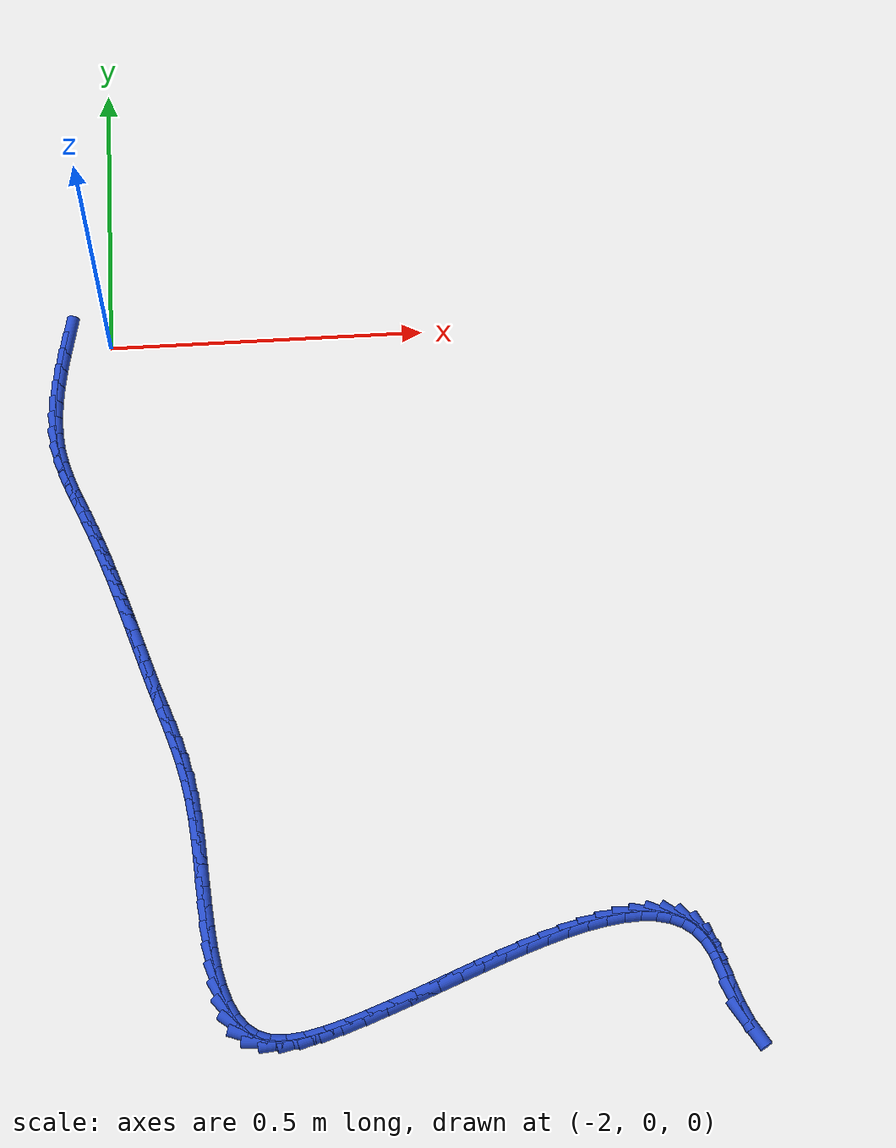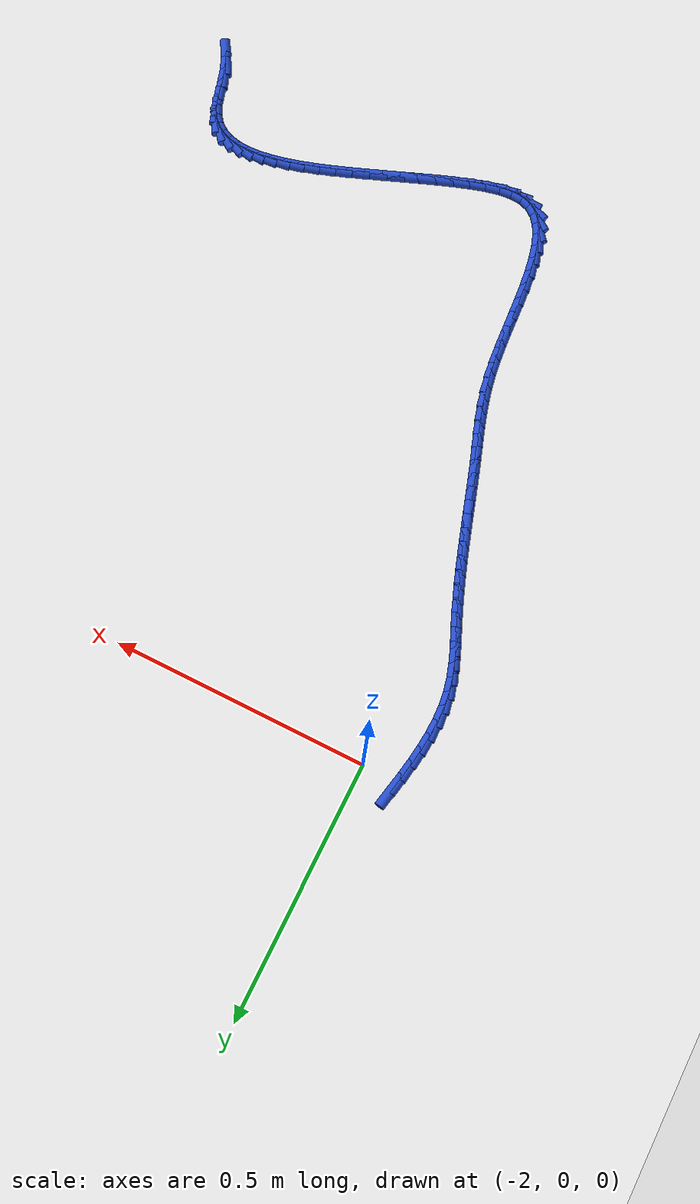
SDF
<sdf version="1.6">
 <world name="default">
  <model name="ground_plane">
   <static>1</static>
   <link name="link">
    <collision name="collision">
     <geometry><plane><normal>0 0 1</normal><size>100 100</size></plane></geometry>
     <surface><friction><ode><mu>100</mu><mu2>50</mu2></ode></friction></surface>
    </collision>
    <visual name="visual">
     <cast_shadows>0</cast_shadows>
     <geometry><plane><normal>0 0 1</normal><size>100 100</size></plane></geometry>
     <material>
      <script><uri>file://media/materials/scripts/gazebo.material</uri><name>Gazebo/WhiteGlow</name></script>
     </material>
    </visual>
   </link>
  </model>
  <model name="line">
   <link name="link_148">
    <pose>-2.0668952257978557 0.015022374834976732 0.01 0 1.57 1.3718555483747725</pose>
    <collision name="collision">
     <geometry><cylinder><radius>0.01</radius><length>0.08</length></cylinder></geometry>
    </collision>
    <visual name="visual">
     <material>
      <script><name>Gazebo/Blue</name><uri>file://media/materials/scripts/gazebo.material</uri></script>
     </material>
     <geometry><cylinder><radius>0.01</radius><length>0.08</length></cylinder></geometry>
    </visual>
   </link>
   <link name="link_149">
    <pose>-2.072897684405517 -0.014750614025961714 0.01 0 1.57 1.3966360684300205</pose>
    <collision name="collision">
     <geometry><cylinder><radius>0.01</radius><length>0.08</length></cylinder></geometry>
    </collision>
    <visual name="visual">
     <material>
      <script><name>Gazebo/Blue</name><uri>file://media/materials/scripts/gazebo.material</uri></script>
     </material>
     <geometry><cylinder><radius>0.01</radius><length>0.08</length></cylinder></geometry>
    </visual>
   </link>
   <link name="link_150">
    <pose>-2.078104745038565 -0.04434581224088639 0.01 0 1.57 1.4318176312545738</pose>
    <collision name="collision">
     <geometry><cylinder><radius>0.01</radius><length>0.08</length></cylinder></geometry>
    </collision>
    <visual name="visual">
     <material>
      <script><name>Gazebo/Blue</name><uri>file://media/materials/scripts/gazebo.material</uri></script>
     </material>
     <geometry><cylinder><radius>0.01</radius><length>0.08</length></cylinder></geometry>
    </visual>
   </link>
   <link name="link_151">
    <pose>-2.0822042166530728 -0.07365277672425838 0.01 0 1.57 1.4783641587624445</pose>
    <collision name="collision">
     <geometry><cylinder><radius>0.01</radius><length>0.08</length></cylinder></geometry>
    </collision>
    <visual name="visual">
     <material>
      <script><name>Gazebo/Blue</name><uri>file://media/materials/scripts/gazebo.material</uri></script>
     </material>
     <geometry><cylinder><radius>0.01</radius><length>0.08</length></cylinder></geometry>
    </visual>
   </link>
   <link name="link_152">
    <pose>-2.0848839082051156 -0.10256106439053783 0.01 0 1.57 1.537437290419115</pose>
    <collision name="collision">
     <geometry><cylinder><radius>0.01</radius><length>0.08</length></cylinder></geometry>
    </collision>
    <visual name="visual">
     <material>
      <script><name>Gazebo/Blue</name><uri>file://media/materials/scripts/gazebo.material</uri></script>
     </material>
     <geometry><cylinder><radius>0.01</radius><length>0.08</length></cylinder></geometry>
    </visual>
   </link>
   <link name="link_153">
    <pose>-2.0858316286507677 -0.13096023215418773 0.01 0 1.57 -1.531347497700764</pose>
    <collision name="collision">
     <geometry><cylinder><radius>0.01</radius><length>0.08</length></cylinder></geometry>
    </collision>
    <visual name="visual">
     <material>
      <script><name>Gazebo/Blue</name><uri>file://media/materials/scripts/gazebo.material</uri></script>
     </material>
     <geometry><cylinder><radius>0.01</radius><length>0.08</length></cylinder></geometry>
    </visual>
   </link>
   <link name="link_154">
    <pose>-2.084735186946103 -0.1587398369296681 0.01 0 1.57 -1.4438364866861566</pose>
    <collision name="collision">
     <geometry><cylinder><radius>0.01</radius><length>0.08</length></cylinder></geometry>
    </collision>
    <visual name="visual">
     <material>
      <script><name>Gazebo/Blue</name><uri>file://media/materials/scripts/gazebo.material</uri></script>
     </material>
     <geometry><cylinder><radius>0.01</radius><length>0.08</length></cylinder></geometry>
    </visual>
   </link>
   <link name="link_155">
    <pose>-2.081282402218603 -0.185789439192193 0.01 0 1.57 -1.3480118682883715</pose>
    <collision name="collision">
     <geometry><cylinder><radius>0.01</radius><length>0.08</length></cylinder></geometry>
    </collision>
    <visual name="visual">
     <material>
      <script><name>Gazebo/Blue</name><uri>file://media/materials/scripts/gazebo.material</uri></script>
     </material>
     <geometry><cylinder><radius>0.01</radius><length>0.08</length></cylinder></geometry>
    </visual>
   </link>
   <link name="link_156">
    <pose>-2.075331346983922 -0.21205820082871427 0.01 0 1.57 -1.2688601374468051</pose>
    <collision name="collision">
     <geometry><cylinder><radius>0.01</radius><length>0.08</length></cylinder></geometry>
    </collision>
    <visual name="visual">
     <material>
      <script><name>Gazebo/Blue</name><uri>file://media/materials/scripts/gazebo.material</uri></script>
     </material>
     <geometry><cylinder><radius>0.01</radius><length>0.08</length></cylinder></geometry>
    </visual>
   </link>
   <link name="link_157">
    <pose>-2.0673430015627 -0.23770634652329317 0.01 0 1.57 -1.2131260402845492</pose>
    <collision name="collision">
     <geometry><cylinder><radius>0.01</radius><length>0.08</length></cylinder></geometry>
    </collision>
    <visual name="visual">
     <material>
      <script><name>Gazebo/Blue</name><uri>file://media/materials/scripts/gazebo.material</uri></script>
     </material>
     <geometry><cylinder><radius>0.01</radius><length>0.08</length></cylinder></geometry>
    </visual>
   </link>
   <link name="link_158">
    <pose>-2.0579117411760026 -0.2629407991459668 0.01 0 1.57 -1.1810681510896888</pose>
    <collision name="collision">
     <geometry><cylinder><radius>0.01</radius><length>0.08</length></cylinder></geometry>
    </collision>
    <visual name="visual">
     <material>
      <script><name>Gazebo/Blue</name><uri>file://media/materials/scripts/gazebo.material</uri></script>
     </material>
     <geometry><cylinder><radius>0.01</radius><length>0.08</length></cylinder></geometry>
    </visual>
   </link>
   <link name="link_159">
    <pose>-2.0476319410448935 -0.2879684815667723 0.01 0 1.57 -1.1724120593991565</pose>
    <collision name="collision">
     <geometry><cylinder><radius>0.01</radius><length>0.08</length></cylinder></geometry>
    </collision>
    <visual name="visual">
     <material>
      <script><name>Gazebo/Blue</name><uri>file://media/materials/scripts/gazebo.material</uri></script>
     </material>
     <geometry><cylinder><radius>0.01</radius><length>0.08</length></cylinder></geometry>
    </visual>
   </link>
   <link name="link_160">
    <pose>-2.037097976390436 -0.31299631665574656 0.01 0 1.57 -1.185182379669828</pose>
    <collision name="collision">
     <geometry><cylinder><radius>0.01</radius><length>0.08</length></cylinder></geometry>
    </collision>
    <visual name="visual">
     <material>
      <script><name>Gazebo/Blue</name><uri>file://media/materials/scripts/gazebo.material</uri></script>
     </material>
     <geometry><cylinder><radius>0.01</radius><length>0.08</length></cylinder></geometry>
    </visual>
   </link>
   <link name="link_161">
    <pose>-2.026861179428575 -0.33821401771417064 0.01 0 1.57 -1.203708096643061</pose>
    <collision name="collision">
     <geometry><cylinder><radius>0.01</radius><length>0.08</length></cylinder></geometry>
    </collision>
    <visual name="visual">
     <material>
      <script><name>Gazebo/Blue</name><uri>file://media/materials/scripts/gazebo.material</uri></script>
     </material>
     <geometry><cylinder><radius>0.01</radius><length>0.08</length></cylinder></geometry>
    </visual>
   </link>
   <link name="link_162">
    <pose>-2.0170791229400535 -0.3636538640989615 0.01 0 1.57 -1.2196746884730596</pose>
    <collision name="collision">
     <geometry><cylinder><radius>0.01</radius><length>0.08</length></cylinder></geometry>
    </collision>
    <visual name="visual">
     <material>
      <script><name>Gazebo/Blue</name><uri>file://media/materials/scripts/gazebo.material</uri></script>
     </material>
     <geometry><cylinder><radius>0.01</radius><length>0.08</length></cylinder></geometry>
    </visual>
   </link>
   <link name="link_163">
    <pose>-2.007698232287559 -0.38926371364492085 0.01 0 1.57 -1.2330521024685104</pose>
    <collision name="collision">
     <geometry><cylinder><radius>0.01</radius><length>0.08</length></cylinder></geometry>
    </collision>
    <visual name="visual">
     <material>
      <script><name>Gazebo/Blue</name><uri>file://media/materials/scripts/gazebo.material</uri></script>
     </material>
     <geometry><cylinder><radius>0.01</radius><length>0.08</length></cylinder></geometry>
    </visual>
   </link>
   <link name="link_164">
    <pose>-1.9986629208203004 -0.41499061973827206 0.01 0 1.57 -1.2438791995998573</pose>
    <collision name="collision">
     <geometry><cylinder><radius>0.01</radius><length>0.08</length></cylinder></geometry>
    </collision>
    <visual name="visual">
     <material>
      <script><name>Gazebo/Blue</name><uri>file://media/materials/scripts/gazebo.material</uri></script>
     </material>
     <geometry><cylinder><radius>0.01</radius><length>0.08</length></cylinder></geometry>
    </visual>
   </link>
   <link name="link_165">
    <pose>-1.9899176018874891 -0.4407816357652384 0.01 0 1.57 -1.2521817978813097</pose>
    <collision name="collision">
     <geometry><cylinder><radius>0.01</radius><length>0.08</length></cylinder></geometry>
    </collision>
    <visual name="visual">
     <material>
      <script><name>Gazebo/Blue</name><uri>file://media/materials/scripts/gazebo.material</uri></script>
     </material>
     <geometry><cylinder><radius>0.01</radius><length>0.08</length></cylinder></geometry>
    </visual>
   </link>
   <link name="link_166">
    <pose>-1.9814066888383344 -0.4665838151120431 0.01 0 1.57 -1.257970723034626</pose>
    <collision name="collision">
     <geometry><cylinder><radius>0.01</radius><length>0.08</length></cylinder></geometry>
    </collision>
    <visual name="visual">
     <material>
      <script><name>Gazebo/Blue</name><uri>file://media/materials/scripts/gazebo.material</uri></script>
     </material>
     <geometry><cylinder><radius>0.01</radius><length>0.08</length></cylinder></geometry>
    </visual>
   </link>
   <link name="link_167">
    <pose>-1.9730745950220463 -0.49234421116490973 0.01 0 1.57 -1.2612401325202107</pose>
    <collision name="collision">
     <geometry><cylinder><radius>0.01</radius><length>0.08</length></cylinder></geometry>
    </collision>
    <visual name="visual">
     <material>
      <script><name>Gazebo/Blue</name><uri>file://media/materials/scripts/gazebo.material</uri></script>
     </material>
     <geometry><cylinder><radius>0.01</radius><length>0.08</length></cylinder></geometry>
    </visual>
   </link>
   <link name="link_168">
    <pose>-1.964865733787834 -0.5180098773100611 0.01 0 1.57 -1.2619660208270171</pose>
    <collision name="collision">
     <geometry><cylinder><radius>0.01</radius><length>0.08</length></cylinder></geometry>
    </collision>
    <visual name="visual">
     <material>
      <script><name>Gazebo/Blue</name><uri>file://media/materials/scripts/gazebo.material</uri></script>
     </material>
     <geometry><cylinder><radius>0.01</radius><length>0.08</length></cylinder></geometry>
    </visual>
   </link>
   <link name="link_169">
    <pose>-1.9567245184849091 -0.5435278669337203 0.01 0 1.57 -1.2601048426464572</pose>
    <collision name="collision">
     <geometry><cylinder><radius>0.01</radius><length>0.08</length></cylinder></geometry>
    </collision>
    <visual name="visual">
     <material>
      <script><name>Gazebo/Blue</name><uri>file://media/materials/scripts/gazebo.material</uri></script>
     </material>
     <geometry><cylinder><radius>0.01</radius><length>0.08</length></cylinder></geometry>
    </visual>
   </link>
   <link name="link_170">
    <pose>-1.9485953624624797 -0.568845233422112 0.01 0 1.57 -1.255592222701656</pose>
    <collision name="collision">
     <geometry><cylinder><radius>0.01</radius><length>0.08</length></cylinder></geometry>
    </collision>
    <visual name="visual">
     <material>
      <script><name>Gazebo/Blue</name><uri>file://media/materials/scripts/gazebo.material</uri></script>
     </material>
     <geometry><cylinder><radius>0.01</radius><length>0.08</length></cylinder></geometry>
    </visual>
   </link>
   <link name="link_171">
    <pose>-1.9404226790697567 -0.5939090301614587 0.01 0 1.57 -1.2483563940652826</pose>
    <collision name="collision">
     <geometry><cylinder><radius>0.01</radius><length>0.08</length></cylinder></geometry>
    </collision>
    <visual name="visual">
     <material>
      <script><name>Gazebo/Blue</name><uri>file://media/materials/scripts/gazebo.material</uri></script>
     </material>
     <geometry><cylinder><radius>0.01</radius><length>0.08</length></cylinder></geometry>
    </visual>
   </link>
   <link name="link_172">
    <pose>-1.9321511523132504 -0.618666705994754 0.01 0 1.57 -1.2424625296788228</pose>
    <collision name="collision">
     <geometry><cylinder><radius>0.01</radius><length>0.08</length></cylinder></geometry>
    </collision>
    <visual name="visual">
     <material>
      <script><name>Gazebo/Blue</name><uri>file://media/materials/scripts/gazebo.material</uri></script>
     </material>
     <geometry><cylinder><radius>0.01</radius><length>0.08</length></cylinder></geometry>
    </visual>
   </link>
   <link name="link_173">
    <pose>-1.9238014591904002 -0.6431767429525537 0.01 0 1.57 -1.247841131215723</pose>
    <collision name="collision">
     <geometry><cylinder><radius>0.01</radius><length>0.08</length></cylinder></geometry>
    </collision>
    <visual name="visual">
     <material>
      <script><name>Gazebo/Blue</name><uri>file://media/materials/scripts/gazebo.material</uri></script>
     </material>
     <geometry><cylinder><radius>0.01</radius><length>0.08</length></cylinder></geometry>
    </visual>
   </link>
   <link name="link_174">
    <pose>-1.9155740336315898 -0.6677602655144917 0.01 0 1.57 -1.2656840586280858</pose>
    <collision name="collision">
     <geometry><cylinder><radius>0.01</radius><length>0.08</length></cylinder></geometry>
    </collision>
    <visual name="visual">
     <material>
      <script><name>Gazebo/Blue</name><uri>file://media/materials/scripts/gazebo.material</uri></script>
     </material>
     <geometry><cylinder><radius>0.01</radius><length>0.08</length></cylinder></geometry>
    </visual>
   </link>
   <link name="link_175">
    <pose>-1.9076952966180576 -0.6927763677815665 0.01 0 1.57 -1.2950069334443015</pose>
    <collision name="collision">
     <geometry><cylinder><radius>0.01</radius><length>0.08</length></cylinder></geometry>
    </collision>
    <visual name="visual">
     <material>
      <script><name>Gazebo/Blue</name><uri>file://media/materials/scripts/gazebo.material</uri></script>
     </material>
     <geometry><cylinder><radius>0.01</radius><length>0.08</length></cylinder></geometry>
    </visual>
   </link>
   <link name="link_176">
    <pose>-1.900391669131042 -0.718584143854776 0.01 0 1.57 -1.334127661604401</pose>
    <collision name="collision">
     <geometry><cylinder><radius>0.01</radius><length>0.08</length></cylinder></geometry>
    </collision>
    <visual name="visual">
     <material>
      <script><name>Gazebo/Blue</name><uri>file://media/materials/scripts/gazebo.material</uri></script>
     </material>
     <geometry><cylinder><radius>0.01</radius><length>0.08</length></cylinder></geometry>
    </visual>
   </link>
   <link name="link_177">
    <pose>-1.8938895721517823 -0.7455426878351185 0.01 0 1.57 -1.3808266008054</pose>
    <collision name="collision">
     <geometry><cylinder><radius>0.01</radius><length>0.08</length></cylinder></geometry>
    </collision>
    <visual name="visual">
     <material>
      <script><name>Gazebo/Blue</name><uri>file://media/materials/scripts/gazebo.material</uri></script>
     </material>
     <geometry><cylinder><radius>0.01</radius><length>0.08</length></cylinder></geometry>
    </visual>
   </link>
   <link name="link_178">
    <pose>-1.888415426661517 -0.7740110938235919 0.01 0 1.57 -1.4303297738023029</pose>
    <collision name="collision">
     <geometry><cylinder><radius>0.01</radius><length>0.08</length></cylinder></geometry>
    </collision>
    <visual name="visual">
     <material>
      <script><name>Gazebo/Blue</name><uri>file://media/materials/scripts/gazebo.material</uri></script>
     </material>
     <geometry><cylinder><radius>0.01</radius><length>0.08</length></cylinder></geometry>
    </visual>
   </link>
   <link name="link_179">
    <pose>-1.8841383276136159 -0.8042598015427438 0.01 0 1.57 -1.4675696443185842</pose>
    <collision name="collision">
     <geometry><cylinder><radius>0.01</radius><length>0.08</length></cylinder></geometry>
    </collision>
    <visual name="visual">
     <material>
      <script><name>Gazebo/Blue</name><uri>file://media/materials/scripts/gazebo.material</uri></script>
     </material>
     <geometry><cylinder><radius>0.01</radius><length>0.08</length></cylinder></geometry>
    </visual>
   </link>
   <link name="link_180">
    <pose>-1.8808523506970836 -0.8359792855400611 0.01 0 1.57 -1.4897568450833243</pose>
    <collision name="collision">
     <geometry><cylinder><radius>0.01</radius><length>0.08</length></cylinder></geometry>
    </collision>
    <visual name="visual">
     <material>
      <script><name>Gazebo/Blue</name><uri>file://media/materials/scripts/gazebo.material</uri></script>
     </material>
     <geometry><cylinder><radius>0.01</radius><length>0.08</length></cylinder></geometry>
    </visual>
   </link>
   <link name="link_181">
    <pose>-1.8782008014401574 -0.8686268551606172 0.01 0 1.57 -1.4990438915960649</pose>
    <collision name="collision">
     <geometry><cylinder><radius>0.01</radius><length>0.08</length></cylinder></geometry>
    </collision>
    <visual name="visual">
     <material>
      <script><name>Gazebo/Blue</name><uri>file://media/materials/scripts/gazebo.material</uri></script>
     </material>
     <geometry><cylinder><radius>0.01</radius><length>0.08</length></cylinder></geometry>
    </visual>
   </link>
   <link name="link_182">
    <pose>-1.8758265753858683 -0.9016591857096802 0.01 0 1.57 -1.4962851167304343</pose>
    <collision name="collision">
     <geometry><cylinder><radius>0.01</radius><length>0.08</length></cylinder></geometry>
    </collision>
    <visual name="visual">
     <material>
      <script><name>Gazebo/Blue</name><uri>file://media/materials/scripts/gazebo.material</uri></script>
     </material>
     <geometry><cylinder><radius>0.01</radius><length>0.08</length></cylinder></geometry>
    </visual>
   </link>
   <link name="link_183">
    <pose>-1.8733725680772486 -0.9345329524925183 0.01 0 1.57 -1.4811792484589803</pose>
    <collision name="collision">
     <geometry><cylinder><radius>0.01</radius><length>0.08</length></cylinder></geometry>
    </collision>
    <visual name="visual">
     <material>
      <script><name>Gazebo/Blue</name><uri>file://media/materials/scripts/gazebo.material</uri></script>
     </material>
     <geometry><cylinder><radius>0.01</radius><length>0.08</length></cylinder></geometry>
    </visual>
   </link>
   <link name="link_184">
    <pose>-1.8704816750573292 -0.9667048308143988 0.01 0 1.57 -1.4522063421026927</pose>
    <collision name="collision">
     <geometry><cylinder><radius>0.01</radius><length>0.08</length></cylinder></geometry>
    </collision>
    <visual name="visual">
     <material>
      <script><name>Gazebo/Blue</name><uri>file://media/materials/scripts/gazebo.material</uri></script>
     </material>
     <geometry><cylinder><radius>0.01</radius><length>0.08</length></cylinder></geometry>
    </visual>
   </link>
   <link name="link_185">
    <pose>-1.8667967918691422 -0.9976314959805922 0.01 0 1.57 -1.4063281413633038</pose>
    <collision name="collision">
     <geometry><cylinder><radius>0.01</radius><length>0.08</length></cylinder></geometry>
    </collision>
    <visual name="visual">
     <material>
      <script><name>Gazebo/Blue</name><uri>file://media/materials/scripts/gazebo.material</uri></script>
     </material>
     <geometry><cylinder><radius>0.01</radius><length>0.08</length></cylinder></geometry>
    </visual>
   </link>
   <link name="link_186">
    <pose>-1.8619608140557196 -1.0267696232963657 0.01 0 1.57 -1.338404537924681</pose>
    <collision name="collision">
     <geometry><cylinder><radius>0.01</radius><length>0.08</length></cylinder></geometry>
    </collision>
    <visual name="visual">
     <material>
      <script><name>Gazebo/Blue</name><uri>file://media/materials/scripts/gazebo.material</uri></script>
     </material>
     <geometry><cylinder><radius>0.01</radius><length>0.08</length></cylinder></geometry>
    </visual>
   </link>
   <link name="link_187">
    <pose>-1.8556166371600913 -1.0535758880669872 0.01 0 1.57 -1.2403292415985003</pose>
    <collision name="collision">
     <geometry><cylinder><radius>0.01</radius><length>0.08</length></cylinder></geometry>
    </collision>
    <visual name="visual">
     <material>
      <script><name>Gazebo/Blue</name><uri>file://media/materials/scripts/gazebo.material</uri></script>
     </material>
     <geometry><cylinder><radius>0.01</radius><length>0.08</length></cylinder></geometry>
    </visual>
   </link>
   <link name="link_188">
    <pose>-1.8474071567252897 -1.077506965597725 0.01 0 1.57 -1.1003234913285729</pose>
    <collision name="collision">
     <geometry><cylinder><radius>0.01</radius><length>0.08</length></cylinder></geometry>
    </collision>
    <visual name="visual">
     <material>
      <script><name>Gazebo/Blue</name><uri>file://media/materials/scripts/gazebo.material</uri></script>
     </material>
     <geometry><cylinder><radius>0.01</radius><length>0.08</length></cylinder></geometry>
    </visual>
   </link>
   <link name="link_189">
    <pose>-1.8369752682943477 -1.0980195311938479 0.01 0 1.57 -0.9045560539656115</pose>
    <collision name="collision">
     <geometry><cylinder><radius>0.01</radius><length>0.08</length></cylinder></geometry>
    </collision>
    <visual name="visual">
     <material>
      <script><name>Gazebo/Blue</name><uri>file://media/materials/scripts/gazebo.material</uri></script>
     </material>
     <geometry><cylinder><radius>0.01</radius><length>0.08</length></cylinder></geometry>
    </visual>
   </link>
   <link name="link_190">
    <pose>-1.8239638674102947 -1.1145702601606233 0.01 0 1.57 -0.6468856784526671</pose>
    <collision name="collision">
     <geometry><cylinder><radius>0.01</radius><length>0.08</length></cylinder></geometry>
    </collision>
    <visual name="visual">
     <material>
      <script><name>Gazebo/Blue</name><uri>file://media/materials/scripts/gazebo.material</uri></script>
     </material>
     <geometry><cylinder><radius>0.01</radius><length>0.08</length></cylinder></geometry>
    </visual>
   </link>
   <link name="link_191">
    <pose>-1.8080158496161638 -1.1266158278033205 0.01 0 1.57 -0.3490315003714841</pose>
    <collision name="collision">
     <geometry><cylinder><radius>0.01</radius><length>0.08</length></cylinder></geometry>
    </collision>
    <visual name="visual">
     <material>
      <script><name>Gazebo/Blue</name><uri>file://media/materials/scripts/gazebo.material</uri></script>
     </material>
     <geometry><cylinder><radius>0.01</radius><length>0.08</length></cylinder></geometry>
    </visual>
   </link>
   <link name="link_192">
    <pose>-1.788777016142505 -1.133617442138384 0.01 0 1.57 -0.08305738865226395</pose>
    <collision name="collision">
     <geometry><cylinder><radius>0.01</radius><length>0.08</length></cylinder></geometry>
    </collision>
    <visual name="visual">
     <material>
      <script><name>Gazebo/Blue</name><uri>file://media/materials/scripts/gazebo.material</uri></script>
     </material>
     <geometry><cylinder><radius>0.01</radius><length>0.08</length></cylinder></geometry>
    </visual>
   </link>
   <link name="link_193">
    <pose>-1.7661890471608461 -1.1354978659000319 0.01 0 1.57 0.09655719910368576</pose>
    <collision name="collision">
     <geometry><cylinder><radius>0.01</radius><length>0.08</length></cylinder></geometry>
    </collision>
    <visual name="visual">
     <material>
      <script><name>Gazebo/Blue</name><uri>file://media/materials/scripts/gazebo.material</uri></script>
     </material>
     <geometry><cylinder><radius>0.01</radius><length>0.08</length></cylinder></geometry>
    </visual>
   </link>
   <link name="link_194">
    <pose>-1.7407405003651997 -1.1330329603894609 0.01 0 1.57 0.210861294836444</pose>
    <collision name="collision">
     <geometry><cylinder><radius>0.01</radius><length>0.08</length></cylinder></geometry>
    </collision>
    <visual name="visual">
     <material>
      <script><name>Gazebo/Blue</name><uri>file://media/materials/scripts/gazebo.material</uri></script>
     </material>
     <geometry><cylinder><radius>0.01</radius><length>0.08</length></cylinder></geometry>
    </visual>
   </link>
   <link name="link_195">
    <pose>-1.7129790573595294 -1.127090816924242 0.01 0 1.57 0.28189997604792194</pose>
    <collision name="collision">
     <geometry><cylinder><radius>0.01</radius><length>0.08</length></cylinder></geometry>
    </collision>
    <visual name="visual">
     <material>
      <script><name>Gazebo/Blue</name><uri>file://media/materials/scripts/gazebo.material</uri></script>
     </material>
     <geometry><cylinder><radius>0.01</radius><length>0.08</length></cylinder></geometry>
    </visual>
   </link>
   <link name="link_196">
    <pose>-1.683452399747799 -1.118539526821946 0.01 0 1.57 0.3231101182294108</pose>
    <collision name="collision">
     <geometry><cylinder><radius>0.01</radius><length>0.08</length></cylinder></geometry>
    </collision>
    <visual name="visual">
     <material>
      <script><name>Gazebo/Blue</name><uri>file://media/materials/scripts/gazebo.material</uri></script>
     </material>
     <geometry><cylinder><radius>0.01</radius><length>0.08</length></cylinder></geometry>
    </visual>
   </link>
   <link name="link_197">
    <pose>-1.652706611782786 -1.1082444643454517 0.01 0 1.57 0.3461771772297909</pose>
    <collision name="collision">
     <geometry><cylinder><radius>0.01</radius><length>0.08</length></cylinder></geometry>
    </collision>
    <visual name="visual">
     <material>
      <script><name>Gazebo/Blue</name><uri>file://media/materials/scripts/gazebo.material</uri></script>
     </material>
     <geometry><cylinder><radius>0.01</radius><length>0.08</length></cylinder></geometry>
    </visual>
   </link>
   <link name="link_198">
    <pose>-1.6211688575093792 -1.0968687234377579 0.01 0 1.57 0.36132767958437995</pose>
    <collision name="collision">
     <geometry><cylinder><radius>0.01</radius><length>0.08</length></cylinder></geometry>
    </collision>
    <visual name="visual">
     <material>
      <script><name>Gazebo/Blue</name><uri>file://media/materials/scripts/gazebo.material</uri></script>
     </material>
     <geometry><cylinder><radius>0.01</radius><length>0.08</length></cylinder></geometry>
    </visual>
   </link>
   <link name="link_199">
    <pose>-1.5890673150653067 -1.0847369279561987 0.01 0 1.57 0.3701857767247808</pose>
    <collision name="collision">
     <geometry><cylinder><radius>0.01</radius><length>0.08</length></cylinder></geometry>
    </collision>
    <visual name="visual">
     <material>
      <script><name>Gazebo/Blue</name><uri>file://media/materials/scripts/gazebo.material</uri></script>
     </material>
     <geometry><cylinder><radius>0.01</radius><length>0.08</length></cylinder></geometry>
    </visual>
   </link>
   <link name="link_200">
    <pose>-1.556611209533288 -1.0721414630822894 0.01 0 1.57 0.373244722361644</pose>
    <collision name="collision">
     <geometry><cylinder><radius>0.01</radius><length>0.08</length></cylinder></geometry>
    </collision>
    <visual name="visual">
     <material>
      <script><name>Gazebo/Blue</name><uri>file://media/materials/scripts/gazebo.material</uri></script>
     </material>
     <geometry><cylinder><radius>0.01</radius><length>0.08</length></cylinder></geometry>
    </visual>
   </link>
   <link name="link_201">
    <pose>-1.5240097659960403 -1.059374713997545 0.01 0 1.57 0.3706818107725646</pose>
    <collision name="collision">
     <geometry><cylinder><radius>0.01</radius><length>0.08</length></cylinder></geometry>
    </collision>
    <visual name="visual">
     <material>
      <script><name>Gazebo/Blue</name><uri>file://media/materials/scripts/gazebo.material</uri></script>
     </material>
     <geometry><cylinder><radius>0.01</radius><length>0.08</length></cylinder></geometry>
    </visual>
   </link>
   <link name="link_202">
    <pose>-1.49147220953628 -1.0467290658834807 0.01 0 1.57 0.3623796075992553</pose>
    <collision name="collision">
     <geometry><cylinder><radius>0.01</radius><length>0.08</length></cylinder></geometry>
    </collision>
    <visual name="visual">
     <material>
      <script><name>Gazebo/Blue</name><uri>file://media/materials/scripts/gazebo.material</uri></script>
     </material>
     <geometry><cylinder><radius>0.01</radius><length>0.08</length></cylinder></geometry>
    </visual>
   </link>
   <link name="link_203">
    <pose>-1.4592077652367255 -1.0344969039216112 0.01 0 1.57 0.34791372765800305</pose>
    <collision name="collision">
     <geometry><cylinder><radius>0.01</radius><length>0.08</length></cylinder></geometry>
    </collision>
    <visual name="visual">
     <material>
      <script><name>Gazebo/Blue</name><uri>file://media/materials/scripts/gazebo.material</uri></script>
     </material>
     <geometry><cylinder><radius>0.01</radius><length>0.08</length></cylinder></geometry>
    </visual>
   </link>
   <link name="link_204">
    <pose>-1.4274256581800955 -1.022970613293453 0.01 0 1.57 0.32650542400537047</pose>
    <collision name="collision">
     <geometry><cylinder><radius>0.01</radius><length>0.08</length></cylinder></geometry>
    </collision>
    <visual name="visual">
     <material>
      <script><name>Gazebo/Blue</name><uri>file://media/materials/scripts/gazebo.material</uri></script>
     </material>
     <geometry><cylinder><radius>0.01</radius><length>0.08</length></cylinder></geometry>
    </visual>
   </link>
   <link name="link_205">
    <pose>-1.396335113449107 -1.0124425791805207 0.01 0 1.57 0.2969318575156461</pose>
    <collision name="collision">
     <geometry><cylinder><radius>0.01</radius><length>0.08</length></cylinder></geometry>
    </collision>
    <visual name="visual">
     <material>
      <script><name>Gazebo/Blue</name><uri>file://media/materials/scripts/gazebo.material</uri></script>
     </material>
     <geometry><cylinder><radius>0.01</radius><length>0.08</length></cylinder></geometry>
    </visual>
   </link>
   <link name="link_206">
    <pose>-1.3661453561264778 -1.0032051867643292 0.01 0 1.57 0.2573816395092838</pose>
    <collision name="collision">
     <geometry><cylinder><radius>0.01</radius><length>0.08</length></cylinder></geometry>
    </collision>
    <visual name="visual">
     <material>
      <script><name>Gazebo/Blue</name><uri>file://media/materials/scripts/gazebo.material</uri></script>
     </material>
     <geometry><cylinder><radius>0.01</radius><length>0.08</length></cylinder></geometry>
    </visual>
   </link>
   <link name="link_207">
    <pose>-1.3370656112949264 -0.9955508212263948 0.01 0 1.57 0.20524052579964297</pose>
    <collision name="collision">
     <geometry><cylinder><radius>0.01</radius><length>0.08</length></cylinder></geometry>
    </collision>
    <visual name="visual">
     <material>
      <script><name>Gazebo/Blue</name><uri>file://media/materials/scripts/gazebo.material</uri></script>
     </material>
     <geometry><cylinder><radius>0.01</radius><length>0.08</length></cylinder></geometry>
    </visual>
   </link>
   <link name="link_208">
    <pose>-1.3093051040371697 -0.9897718677482317 0.01 0 1.57 0.13680217222501645</pose>
    <collision name="collision">
     <geometry><cylinder><radius>0.01</radius><length>0.08</length></cylinder></geometry>
    </collision>
    <visual name="visual">
     <material>
      <script><name>Gazebo/Blue</name><uri>file://media/materials/scripts/gazebo.material</uri></script>
     </material>
     <geometry><cylinder><radius>0.01</radius><length>0.08</length></cylinder></geometry>
    </visual>
   </link>
   <link name="link_209">
    <pose>-1.2830730594359256 -0.9861607115113559 0.01 0 1.57 0.04695480778832947</pose>
    <collision name="collision">
     <geometry><cylinder><radius>0.01</radius><length>0.08</length></cylinder></geometry>
    </collision>
    <visual name="visual">
     <material>
      <script><name>Gazebo/Blue</name><uri>file://media/materials/scripts/gazebo.material</uri></script>
     </material>
     <geometry><cylinder><radius>0.01</radius><length>0.08</length></cylinder></geometry>
    </visual>
   </link>
   <link name="link_210">
    <pose>-1.2585787025739126 -0.9850097376972823 0.01 0 1.57 -0.07091306057884747</pose>
    <collision name="collision">
     <geometry><cylinder><radius>0.01</radius><length>0.08</length></cylinder></geometry>
    </collision>
    <visual name="visual">
     <material>
      <script><name>Gazebo/Blue</name><uri>file://media/materials/scripts/gazebo.material</uri></script>
     </material>
     <geometry><cylinder><radius>0.01</radius><length>0.08</length></cylinder></geometry>
    </visual>
   </link>
   <link name="link_211">
    <pose>-1.2360312585338478 -0.9866113314875261 0.01 0 1.57 -0.22404351606070175</pose>
    <collision name="collision">
     <geometry><cylinder><radius>0.01</radius><length>0.08</length></cylinder></geometry>
    </collision>
    <visual name="visual">
     <material>
      <script><name>Gazebo/Blue</name><uri>file://media/materials/scripts/gazebo.material</uri></script>
     </material>
     <geometry><cylinder><radius>0.01</radius><length>0.08</length></cylinder></geometry>
    </visual>
   </link>
   <link name="link_212">
    <pose>-1.2156399523984491 -0.9912578780636028 0.01 0 1.57 -0.41694291220011453</pose>
    <collision name="collision">
     <geometry><cylinder><radius>0.01</radius><length>0.08</length></cylinder></geometry>
    </collision>
    <visual name="visual">
     <material>
      <script><name>Gazebo/Blue</name><uri>file://media/materials/scripts/gazebo.material</uri></script>
     </material>
     <geometry><cylinder><radius>0.01</radius><length>0.08</length></cylinder></geometry>
    </visual>
   </link>
   <link name="link_213">
    <pose>-1.1976140092504344 -0.9992417626070276 0.01 0 1.57 -0.6445395919853283</pose>
    <collision name="collision">
     <geometry><cylinder><radius>0.01</radius><length>0.08</length></cylinder></geometry>
    </collision>
    <visual name="visual">
     <material>
      <script><name>Gazebo/Blue</name><uri>file://media/materials/scripts/gazebo.material</uri></script>
     </material>
     <geometry><cylinder><radius>0.01</radius><length>0.08</length></cylinder></geometry>
    </visual>
   </link>
   <link name="link_214">
    <pose>-1.1821626541725214 -1.0108553702993155 0.01 0 1.57 -0.8867462869749211</pose>
    <collision name="collision">
     <geometry><cylinder><radius>0.01</radius><length>0.08</length></cylinder></geometry>
    </collision>
    <visual name="visual">
     <material>
      <script><name>Gazebo/Blue</name><uri>file://media/materials/scripts/gazebo.material</uri></script>
     </material>
     <geometry><cylinder><radius>0.01</radius><length>0.08</length></cylinder></geometry>
    </visual>
   </link>
   <link name="link_215">
    <pose>-1.169495112247428 -1.026391086321982 0.01 0 1.57 -1.110713186127704</pose>
    <collision name="collision">
     <geometry><cylinder><radius>0.01</radius><length>0.08</length></cylinder></geometry>
    </collision>
    <visual name="visual">
     <material>
      <script><name>Gazebo/Blue</name><uri>file://media/materials/scripts/gazebo.material</uri></script>
     </material>
     <geometry><cylinder><radius>0.01</radius><length>0.08</length></cylinder></geometry>
    </visual>
   </link>
   <link name="link_216">
    <pose>-1.1597405178372524 -1.0460753738660256 0.01 0 1.57 -1.2506047511790621</pose>
    <collision name="collision">
     <geometry><cylinder><radius>0.01</radius><length>0.08</length></cylinder></geometry>
    </collision>
    <visual name="visual">
     <material>
      <script><name>Gazebo/Blue</name><uri>file://media/materials/scripts/gazebo.material</uri></script>
     </material>
     <geometry><cylinder><radius>0.01</radius><length>0.08</length></cylinder></geometry>
    </visual>
   </link>
   <link name="link_217">
    <pose>-1.1520337645535674 -1.0693163450223457 0.01 0 1.57 -1.2972729612274732</pose>
    <collision name="collision">
     <geometry><cylinder><radius>0.01</radius><length>0.08</length></cylinder></geometry>
    </collision>
    <visual name="visual">
     <material>
      <script><name>Gazebo/Blue</name><uri>file://media/materials/scripts/gazebo.material</uri></script>
     </material>
     <geometry><cylinder><radius>0.01</radius><length>0.08</length></cylinder></geometry>
    </visual>
   </link>
   <link name="link_218">
    <pose>-1.1448369637796685 -1.0949683505555732 0.01 0 1.57 -1.2737106930818511</pose>
    <collision name="collision">
     <geometry><cylinder><radius>0.01</radius><length>0.08</length></cylinder></geometry>
    </collision>
    <visual name="visual">
     <material>
      <script><name>Gazebo/Blue</name><uri>file://media/materials/scripts/gazebo.material</uri></script>
     </material>
     <geometry><cylinder><radius>0.01</radius><length>0.08</length></cylinder></geometry>
    </visual>
   </link>
   <link name="link_219">
    <pose>-1.1365995180364168 -1.121875280673831 0.01 0 1.57 -1.1894478130544994</pose>
    <collision name="collision">
     <geometry><cylinder><radius>0.01</radius><length>0.08</length></cylinder></geometry>
    </collision>
    <visual name="visual">
     <material>
      <script><name>Gazebo/Blue</name><uri>file://media/materials/scripts/gazebo.material</uri></script>
     </material>
     <geometry><cylinder><radius>0.01</radius><length>0.08</length></cylinder></geometry>
    </visual>
   </link>
   <link name="link_220">
    <pose>-1.1257708298446731 -1.1488810255852409 0.01 0 1.57 -1.0475104786386453</pose>
    <collision name="collision">
     <geometry><cylinder><radius>0.01</radius><length>0.08</length></cylinder></geometry>
    </collision>
    <visual name="visual">
     <material>
      <script><name>Gazebo/Blue</name><uri>file://media/materials/scripts/gazebo.material</uri></script>
     </material>
     <geometry><cylinder><radius>0.01</radius><length>0.08</length></cylinder></geometry>
    </visual>
   </link>
  </model>
 </world>
</sdf>
